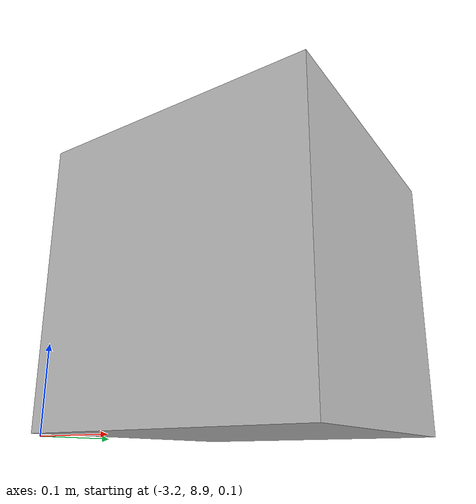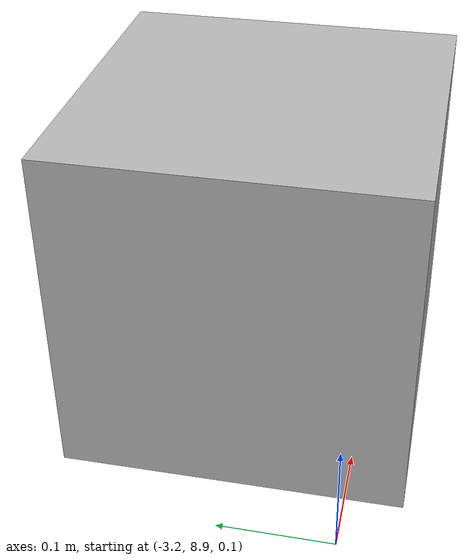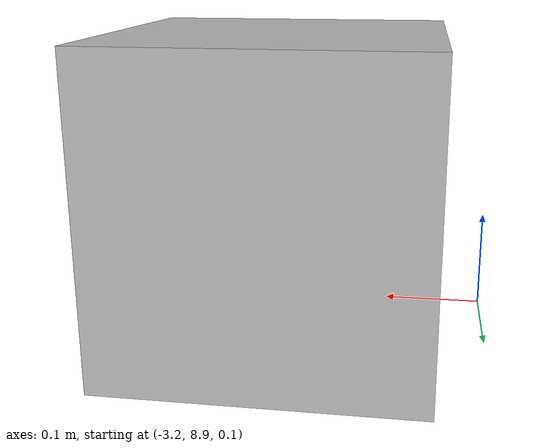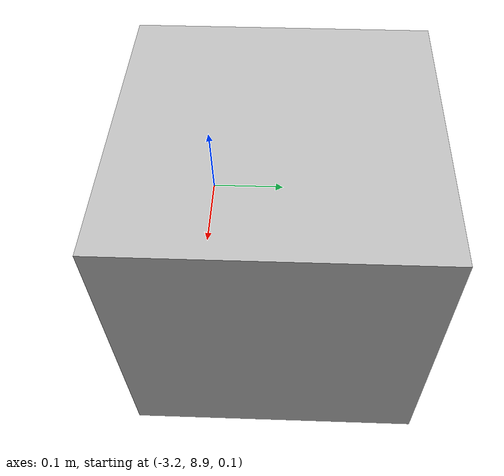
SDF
<?xml version="1.0"?>
<sdf version="1.5">
    <model name="3cube">
        <static>true</static>
        <link name="link">

             <collision name="collision3">
                <pose>-3 9 0.1 0 0 0</pose>
                <geometry>
                    <mesh>
                        <uri>model://3cube/meshes/cube.dae</uri>
                    </mesh>
                </geometry>
            </collision>
            <visual name="visual3">

              <pose>-3 9 0.1 0 0 0</pose>
              <geometry>
              <mesh>
                 <uri>model://3cube/meshes/cube_green.dae</uri>
              </mesh>
              </geometry>

              <material>
                  <script>
                      <uri>model://3cube/materials/scripts</uri>
                      <uri>model://3cube/materials/textures</uri>
                      <name>cubeMat/Diffuse</name>
                  </script>
              </material>
             </visual>

        </link>
    </model>
</sdf>
